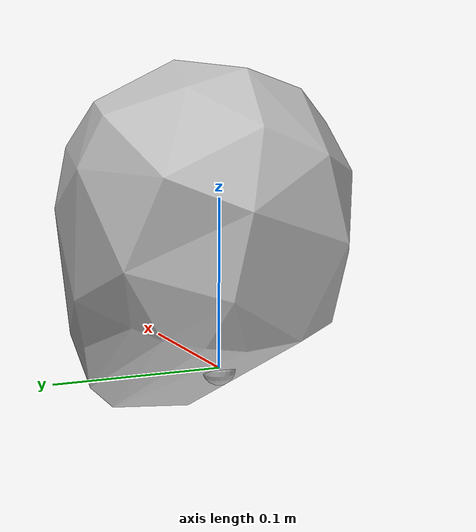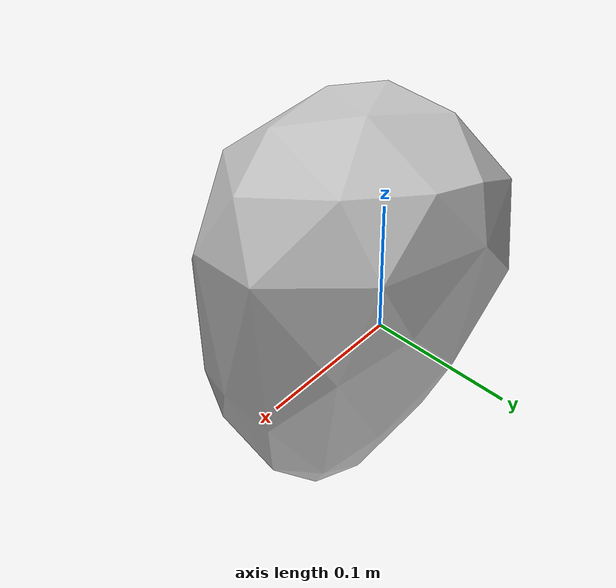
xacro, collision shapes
<?xml version="1.0" encoding="utf-8"?>
<robot xmlns:xacro="http://wiki.ros.org/xacro"
  name="head">
  <link
    name="head_yaw_link">
    <inertial>
      <origin
        xyz="-0.000202 0.000454 0.007248"
        rpy="0 0 0" />
      <mass
        value="0.0883974" />
      <inertia
        ixx="0.000095"
        ixy="-0.000001"
        ixz="-0.000003"
        iyy="0.000076"
        iyz="-0.000003"
        izz="0.000106" />
    </inertial>
    <visual>
      <origin
        xyz="0 0 0"
        rpy="0 0 0" />
      <geometry>
        <mesh
          filename="package://dual_arm_v2_description/meshes/head/visual/head_yaw_link.STL" />
      </geometry>
      <material
        name="">
        <color
          rgba="0.752941176470588 0.752941176470588 0.752941176470588 1" />
      </material>
    </visual>
    <collision>
      <origin
        xyz="0 0 0"
        rpy="0 0 0" />
      <geometry>
        <sphere radius="0.01"/>
      </geometry>
    </collision>
  </link>
  <link
    name="head_pitch_link">
    <inertial>
      <origin
        xyz="-0.000274 0.004118 0.000023"
        rpy="0 0 0" />
      <mass
        value="0.230460" />
      <inertia
        ixx="0.000092"
        ixy="0.000001"
        ixz="-0.000001"
        iyy="0.000054"
        iyz="0"
        izz="0.000095" />
    </inertial>
    <visual>
      <origin
        xyz="0 0 0"
        rpy="0 0 0" />
      <geometry>
        <mesh
          filename="package://dual_arm_v2_description/meshes/head/visual/head_pitch_link.STL" />
      </geometry>
      <material
        name="">
        <color
          rgba="0.752941176470588 0.752941176470588 0.752941176470588 1" />
      </material>
    </visual>
    <collision>
      <origin
        xyz="0 0 0"
        rpy="0 0 0" />
      <geometry>
        <sphere radius="0.01"/>
      </geometry>
    </collision>
  </link>
  <joint
    name="head_pitch_joint"
    type="revolute">
    <origin
      xyz="0.01455 0 0.0304"
      rpy="0 0.2618 0" />
    <parent
      link="head_yaw_link" />
    <child
      link="head_pitch_link" />
    <axis
      xyz="0 1 0" />
    <limit
      lower="-0.436"
      upper="0.436"
      effort="9"
      velocity="7.54" />
  </joint>
  <link
    name="head_roll_link">
    <inertial>
      <origin
        xyz="0.022467 0.001208 0.053952"
        rpy="0 0 0" />
      <mass
        value="0.844627" />
      <inertia
        ixx="0.002350"
        ixy="0.000038"
        ixz="0.000436"
        iyy="0.003365"
        iyz="0.000006"
        izz="0.002875" />
    </inertial>
    <visual>
      <origin
        xyz="0 0 0"
        rpy="0 0 0" />
      <geometry>
        <mesh
          filename="package://dual_arm_v2_description/meshes/head/visual/head_roll_link.STL" />
      </geometry>
      <material
        name="">
        <color
          rgba="0.752941176470588 0.752941176470588 0.752941176470588 1" />
      </material>
    </visual>
    <collision>
      <origin
        xyz="0 0 0"
        rpy="0 0 0" />
      <geometry>
        <mesh
          filename="package://dual_arm_v2_description/meshes/head/collision/head_roll_link.STL" />
      </geometry>
    </collision>
  </link>
  <joint
    name="head_roll_joint"
    type="revolute">
    <origin
      xyz="0 0 0"
      rpy="0 0 0" />
    <parent
      link="head_pitch_link" />
    <child
      link="head_roll_link" />
    <axis
      xyz="1 0 0" />
    <limit
      lower="-0.453"
      upper="0.453"
      effort="9"
      velocity="7.54" />
  </joint>
</robot>
